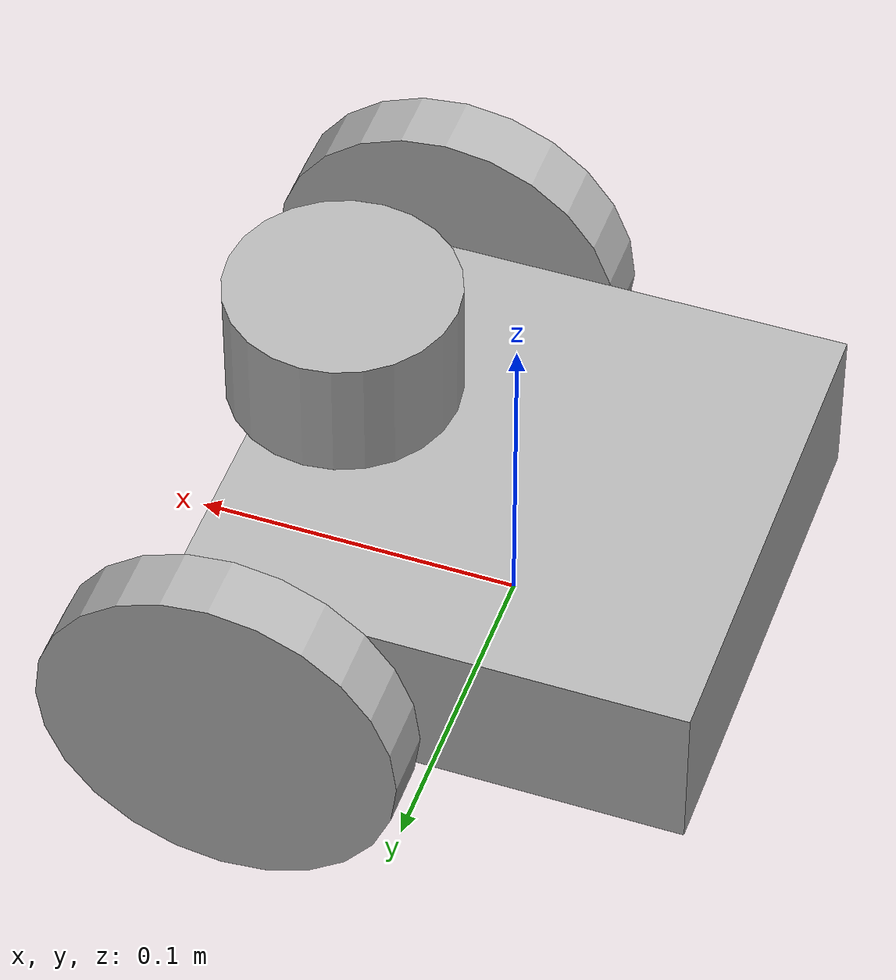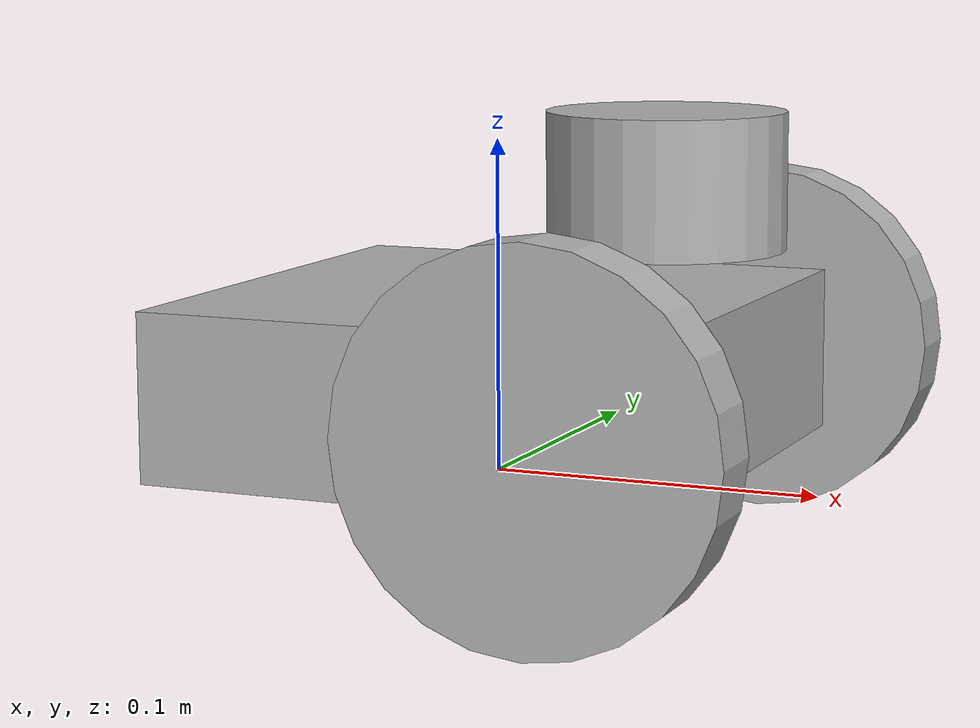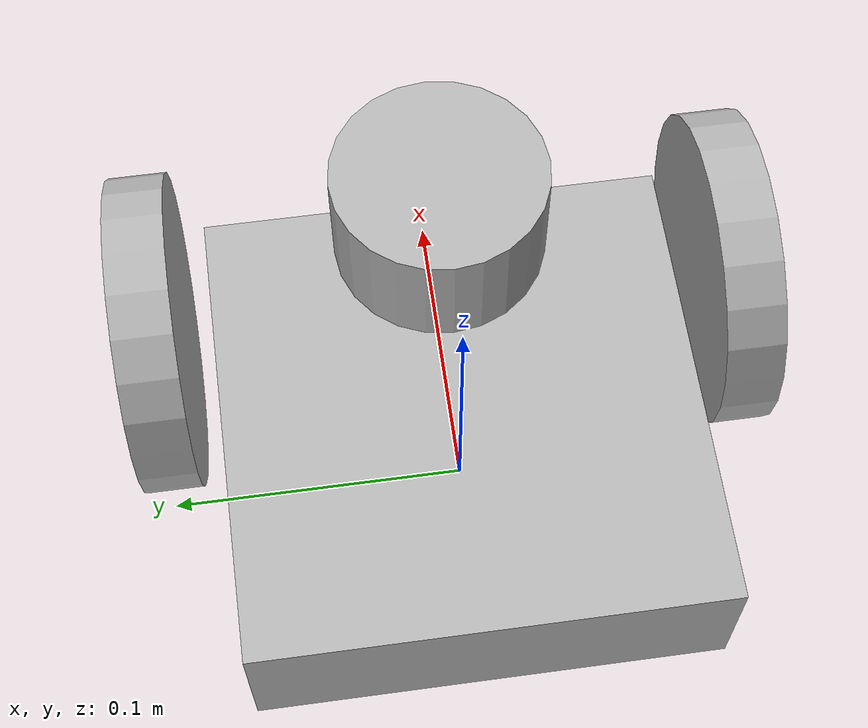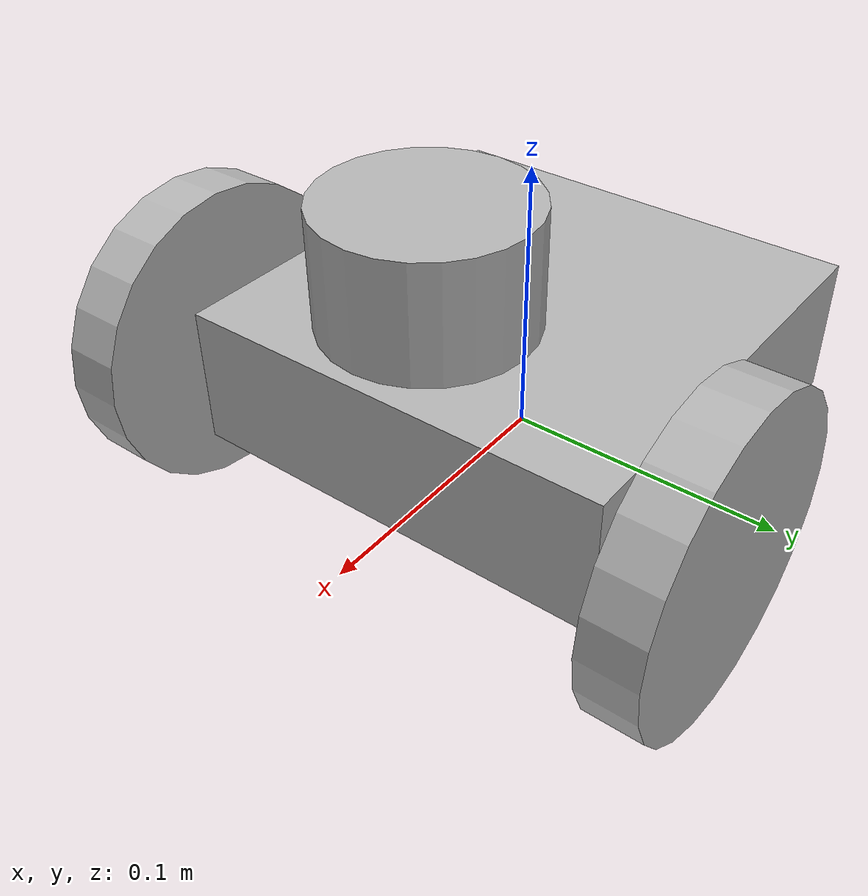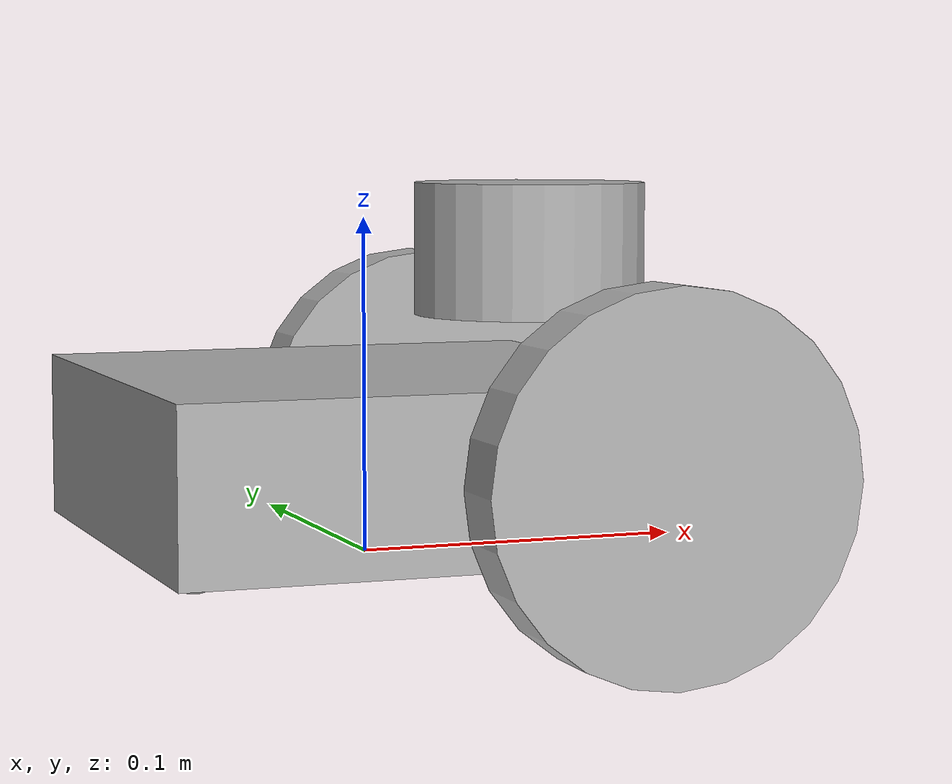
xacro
<?xml version="1.0" ?>
<robot name="my_robot" xmlns:xacro="http://www.ros.org/wiki/xacro">

  <!-- Material Definition -->
  <material name="silver">
    <color rgba="0.700 0.700 0.700 1.000"/>
  </material>

  <xacro:property name="body_color" value="Gazebo/Silver"/>

  <!-- Gazebo Properties for Links -->
  <gazebo reference="base_link">
    <material>${body_color}</material>
    <mu1>0.5</mu1>
    <mu2>0.5</mu2>
    <self_collide>false</self_collide>
    <gravity>true</gravity>
  </gazebo>

  <gazebo reference="right_wheel_1">
    <material>${body_color}</material>
    <mu1>1.0</mu1>
    <mu2>1.0</mu2>
    <self_collide>false</self_collide>
  </gazebo>

  <gazebo reference="left_wheel_1">
    <material>${body_color}</material>
    <mu1>1.0</mu1>
    <mu2>1.0</mu2>
    <self_collide>false</self_collide>
  </gazebo>

  <gazebo reference="lidar_1">
    <material>${body_color}</material>
    <mu1>0.5</mu1>
    <mu2>0.5</mu2>
    <self_collide>false</self_collide>
  </gazebo>

  <gazebo reference="caster_wheel">
    <material>${body_color}</material>
    <mu1>0.5</mu1>
    <mu2>0.5</mu2>
    <self_collide>false</self_collide>
  </gazebo>

  <!-- Gazebo Plugins -->
  <gazebo>
    <plugin filename="gz-sim-sensors-system" name="gz::sim::systems::Sensors">
      <render_engine>ogre2</render_engine>
    </plugin>

    <plugin filename="gz-sim-joint-state-publisher-system" name="gz::sim::systems::JointStatePublisher">
      <topic>/joint_states</topic>
    </plugin>

    <plugin filename="gz-sim-diff-drive-system" name="gz::sim::systems::DiffDrive">
      <left_joint>left_wheel_joint</left_joint>
      <right_joint>right_wheel_joint</right_joint>
      <wheel_separation>0.198</wheel_separation>
      <wheel_radius>0.055</wheel_radius>
      <odom_publish_frequency>30</odom_publish_frequency>
      <topic>/cmd_vel</topic>
      <tf_topic>/tf</tf_topic>
      <frame_id>odom</frame_id>
      <odom_topic>odom</odom_topic>
      <child_frame_id>base_footprint</child_frame_id>
    </plugin>
  </gazebo>

  <!-- LIDAR Sensor (RPLIDAR C1) -->
  <gazebo reference="lidar_1">
    <sensor name="gpu_lidar" type="gpu_lidar">
      <pose>0 0 0 0 0 0</pose>
      <topic>scan</topic>
      <gz_frame_id>lidar_1</gz_frame_id>
      <update_rate>10</update_rate>
      <lidar>
        <scan>
          <horizontal>
            <samples>500</samples>
            <resolution>1</resolution>
            <min_angle>0</min_angle>
            <max_angle>6.280000</max_angle>
          </horizontal>
          <vertical>
            <samples>1</samples>
            <resolution>1</resolution>
            <min_angle>0.0</min_angle>
            <max_angle>0.0</max_angle>
          </vertical>
        </scan>
        <range>
          <min>0.05</min>
          <max>12.0</max>
          <resolution>0.015</resolution>
        </range>
      </lidar>
      <visualize>true</visualize>
    </sensor>
  </gazebo>

  <!-- Links -->
  <link name="base_footprint"/>

  <link name="base_link">
    <inertial>
      <origin xyz="0 0 0.025" rpy="0 0 0"/>
      <mass value="1.5"/>
      <inertia ixx="0.001625" iyy="0.001625" izz="0.003125" ixy="0.0" iyz="0.0" ixz="0.0"/>
    </inertial>
    <visual>
      <origin xyz="0 0 0" rpy="0 0 0"/>
      <geometry>
        <box size="0.156 0.156 0.05"/>
      </geometry>
      <material name="silver"/>
    </visual>
    <collision>
      <origin xyz="0 0 0" rpy="0 0 0"/>
      <geometry>
        <box size="0.156 0.156 0.05"/>
      </geometry>
    </collision>
  </link>

  <link name="right_wheel_1">
    <inertial>
      <origin xyz="0 0 0" rpy="0 0 0"/>
      <mass value="0.15"/>
      <inertia ixx="0.000091" iyy="0.000051" izz="0.000091" ixy="0.0" iyz="0.0" ixz="0.0"/>
    </inertial>
    <visual>
      <origin xyz="0 0 0" rpy="1.5708 0 0"/>
      <geometry>
        <cylinder radius="0.055" length="0.02"/>
      </geometry>
      <material name="silver"/>
    </visual>
    <collision>
      <origin xyz="0 0 0" rpy="1.5708 0 0"/>
      <geometry>
        <cylinder radius="0.055" length="0.02"/>
      </geometry>
    </collision>
  </link>

  <link name="left_wheel_1">
    <inertial>
      <origin xyz="0 0 0" rpy="0 0 0"/>
      <mass value="0.15"/>
      <inertia ixx="0.000091" iyy="0.000051" izz="0.000091" ixy="0.0" iyz="0.0" ixz="0.0"/>
    </inertial>
    <visual>
      <origin xyz="0 0 0" rpy="1.5708 0 0"/>
      <geometry>
        <cylinder radius="0.055" length="0.02"/>
      </geometry>
      <material name="silver"/>
    </visual>
    <collision>
      <origin xyz="0 0 0" rpy="1.5708 0 0"/>
      <geometry>
        <cylinder radius="0.055" length="0.02"/>
      </geometry>
    </collision>
  </link>

  <link name="lidar_1">
    <inertial>
      <origin xyz="0 0 0" rpy="0 0 0"/>
      <mass value="0.11"/>
      <inertia ixx="0.000048" iyy="0.000048" izz="0.000067" ixy="0.0" iyz="0.0" ixz="0.0"/>
    </inertial>
    <visual>
      <origin xyz="0 0 0" rpy="0 0 0"/>
      <geometry>
        <cylinder radius="0.035" length="0.04"/>
      </geometry>
      <material name="silver"/>
    </visual>
    <collision>
      <origin xyz="0 0 0" rpy="0 0 0"/>
      <geometry>
        <cylinder radius="0.035" length="0.04"/>
      </geometry>
    </collision>
  </link>

  <link name="caster_wheel">
    <inertial>
      <origin xyz="0 0 0" rpy="0 0 0"/>
      <mass value="0.05"/>
      <inertia ixx="0.000002" iyy="0.000002" izz="0.000002" ixy="0.0" iyz="0.0" ixz="0.0"/>
    </inertial>
    <visual>
      <origin xyz="0 0 0" rpy="0 0 0"/>
      <geometry>
        <sphere radius="0.01"/>
      </geometry>
      <material name="silver"/>
    </visual>
    <collision>
      <origin xyz="0 0 0" rpy="0 0 0"/>
      <geometry>
        <sphere radius="0.01"/>
      </geometry>
    </collision>
  </link>

  <!-- Joints -->
  <joint name="base_joint" type="fixed">
    <origin xyz="0.0 0.0 0.03" rpy="0 0 0"/>
    <parent link="base_footprint"/>
    <child link="base_link"/>
  </joint>

  <joint name="right_wheel_joint" type="continuous">
    <origin xyz="0.053 -0.099 0.0" rpy="0 0 0"/>
    <parent link="base_link"/>
    <child link="right_wheel_1"/>
    <axis xyz="0.0 1.0 0.0"/>
  </joint>

  <joint name="left_wheel_joint" type="continuous">
    <origin xyz="0.053 0.099 0.0" rpy="0 0 0"/>
    <parent link="base_link"/>
    <child link="left_wheel_1"/>
    <axis xyz="0.0 1.0 0.0"/>
  </joint>

  <joint name="lidar_joint" type="fixed">
    <origin xyz="0.053 0.0 0.06" rpy="0 0 0"/>
    <parent link="base_link"/>
    <child link="lidar_1"/>
  </joint>

  <joint name="caster_joint" type="fixed">
    <origin xyz="-0.053 0.0 -0.03" rpy="0 0 0"/>
    <parent link="base_link"/>
    <child link="caster_wheel"/>
  </joint>

</robot>
